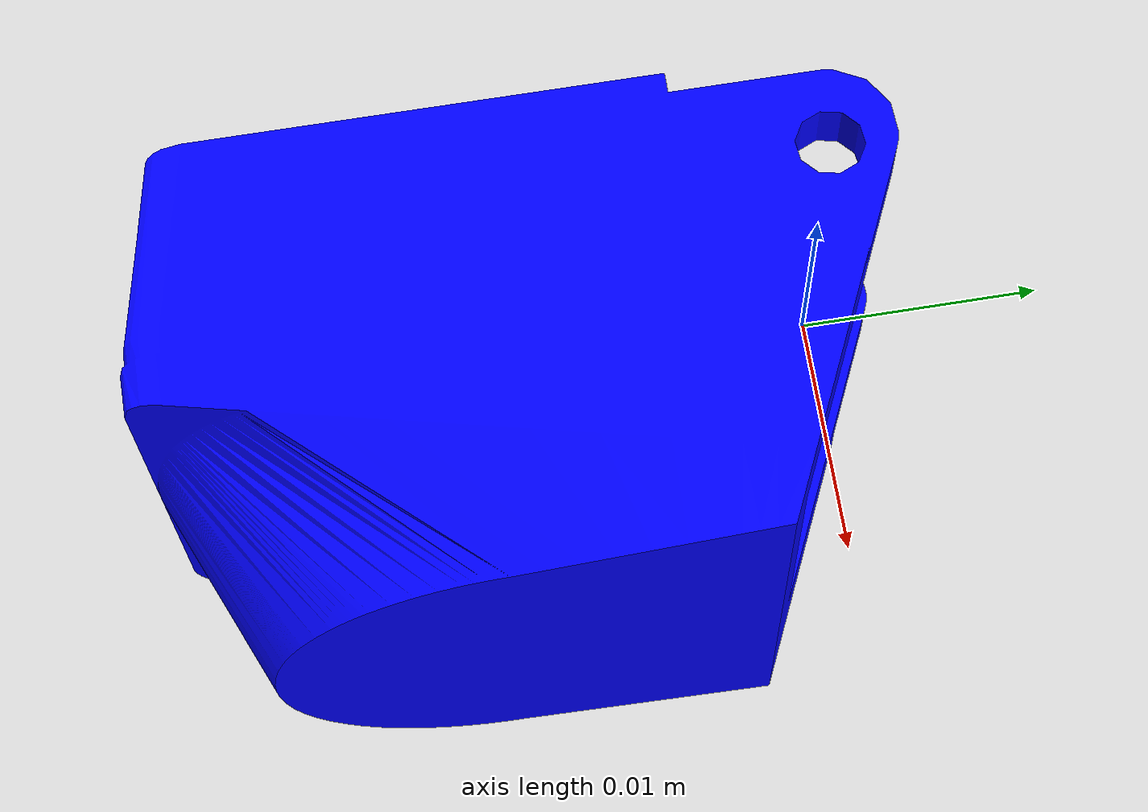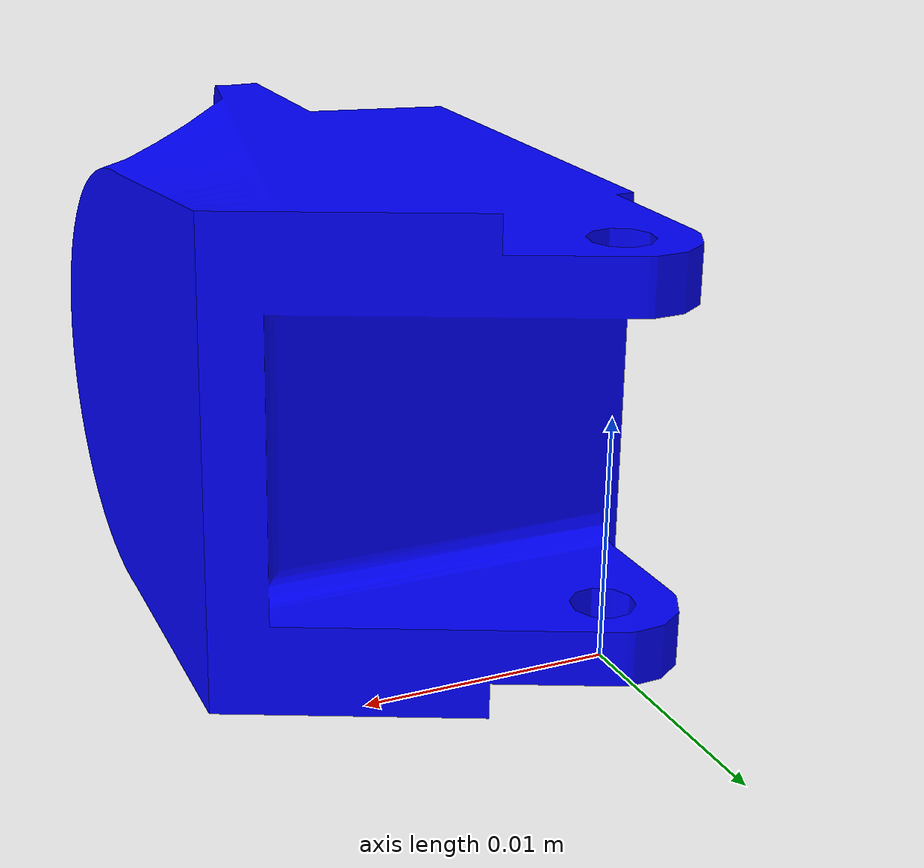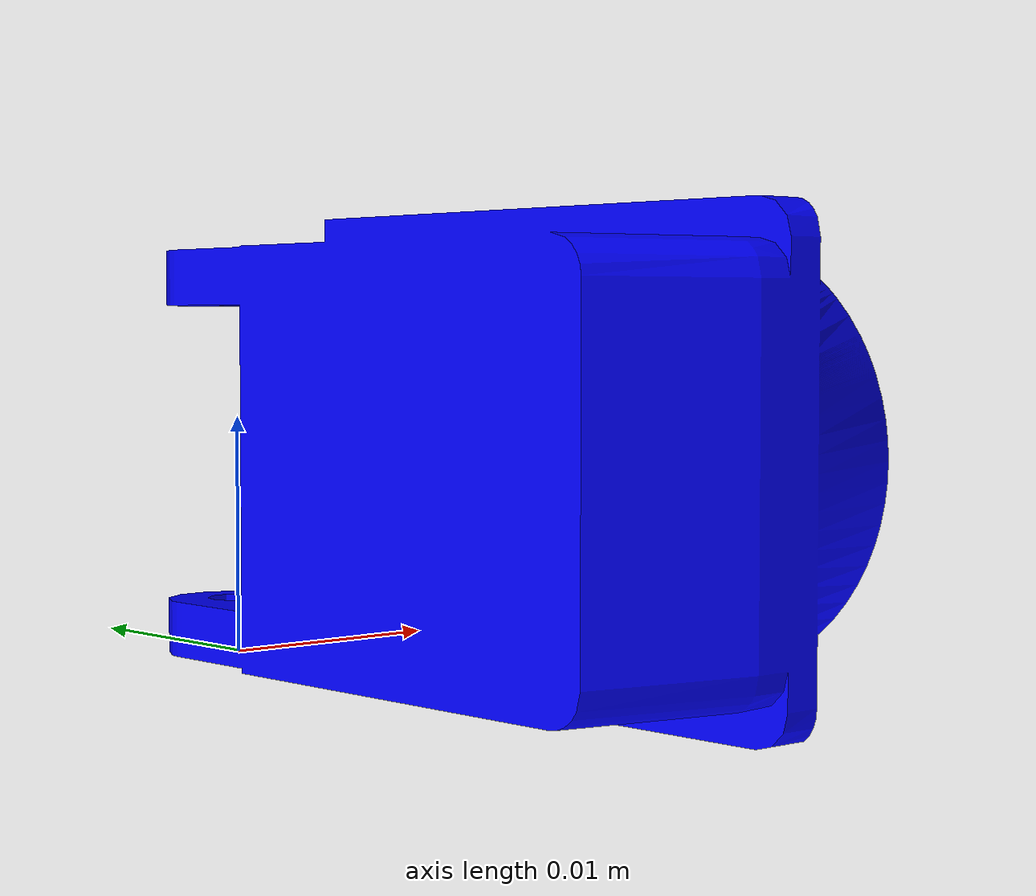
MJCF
<mujoco model="push_latch_button">
  <default>
    <default class="visual">
      <geom group="2" type="mesh" contype="0" conaffinity="0"/>
    </default>
    <default class="collision">
      <geom group="3" type="mesh"/>
    </default>
  </default>
  <asset>
    <material name="mtl_push_latch_button" specular="0.20000000000000004" shininess="1.0" rgba="0.00000000 0.00000000 1.00000000 1.0"/>
    <mesh file="push_latch_button.obj"/>
  </asset>
  <worldbody>
    <body name="push_latch_button">
      <geom material="mtl_push_latch_button" mesh="push_latch_button" class="visual"/>
      <geom mesh="push_latch_button" class="collision"/>
    </body>
  </worldbody>
</mujoco>
